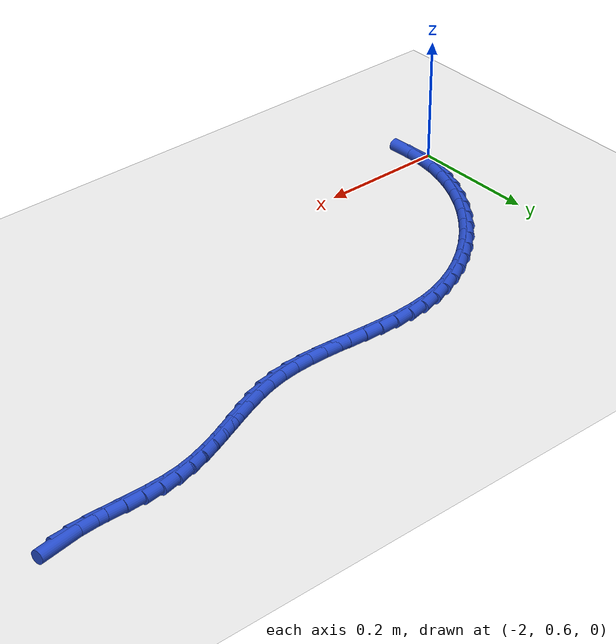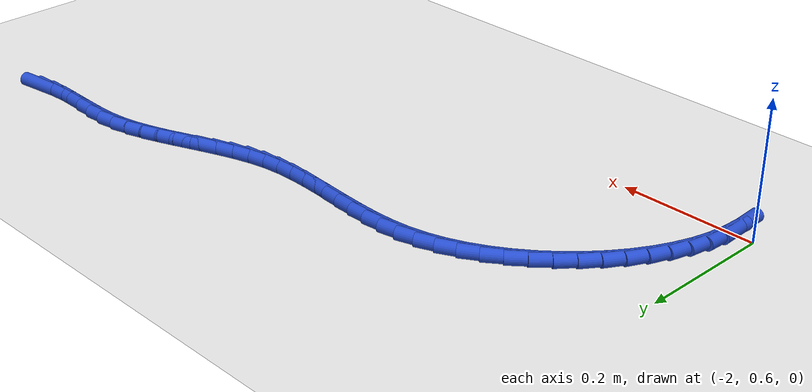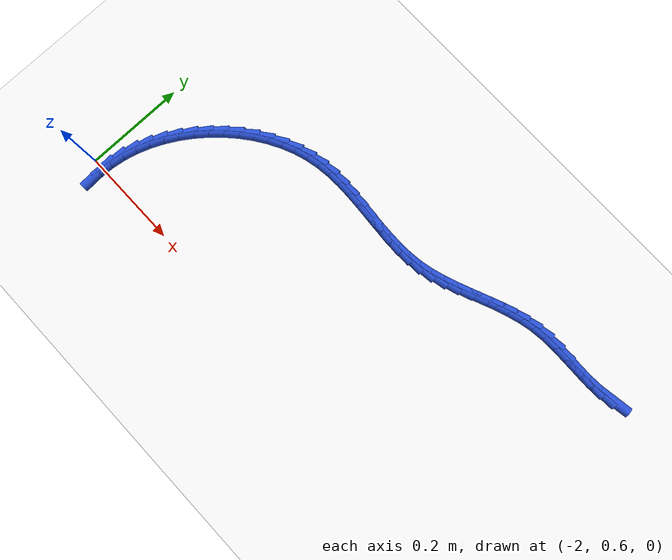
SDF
<sdf version="1.6">
 <world name="default">
  <model name="ground_plane">
   <static>1</static>
   <link name="link">
    <collision name="collision">
     <geometry><plane><normal>0 0 1</normal><size>100 100</size></plane></geometry>
     <surface><friction><ode><mu>100</mu><mu2>50</mu2></ode></friction></surface>
    </collision>
    <visual name="visual">
     <cast_shadows>0</cast_shadows>
     <geometry><plane><normal>0 0 1</normal><size>100 100</size></plane></geometry>
     <material>
      <script><uri>file://media/materials/scripts/gazebo.material</uri><name>Gazebo/WhiteGlow</name></script>
     </material>
    </visual>
   </link>
  </model>
  <model name="line">
   <link name="link_62">
    <pose>-1.0163039654575499 0.9964353679972839 0.01 0 1.57 0.1558032724814868</pose>
    <collision name="collision">
     <geometry><cylinder><radius>0.01</radius><length>0.08</length></cylinder></geometry>
    </collision>
    <visual name="visual">
     <material>
      <script><name>Gazebo/Blue</name><uri>file://media/materials/scripts/gazebo.material</uri></script>
     </material>
     <geometry><cylinder><radius>0.01</radius><length>0.08</length></cylinder></geometry>
    </visual>
   </link>
   <link name="link_63">
    <pose>-1.0424464535973896 0.9923290020193334 0.01 0 1.57 0.058876391674849204</pose>
    <collision name="collision">
     <geometry><cylinder><radius>0.01</radius><length>0.08</length></cylinder></geometry>
    </collision>
    <visual name="visual">
     <material>
      <script><name>Gazebo/Blue</name><uri>file://media/materials/scripts/gazebo.material</uri></script>
     </material>
     <geometry><cylinder><radius>0.01</radius><length>0.08</length></cylinder></geometry>
    </visual>
   </link>
   <link name="link_64">
    <pose>-1.069220046005786 0.9907508455619091 0.01 0 1.57 0.0003150934045366978</pose>
    <collision name="collision">
     <geometry><cylinder><radius>0.01</radius><length>0.08</length></cylinder></geometry>
    </collision>
    <visual name="visual">
     <material>
      <script><name>Gazebo/Blue</name><uri>file://media/materials/scripts/gazebo.material</uri></script>
     </material>
     <geometry><cylinder><radius>0.01</radius><length>0.08</length></cylinder></geometry>
    </visual>
   </link>
   <link name="link_65">
    <pose>-1.096404676529562 0.9907422798638428 0.01 0 1.57 -0.02200167445753424</pose>
    <collision name="collision">
     <geometry><cylinder><radius>0.01</radius><length>0.08</length></cylinder></geometry>
    </collision>
    <visual name="visual">
     <material>
      <script><name>Gazebo/Blue</name><uri>file://media/materials/scripts/gazebo.material</uri></script>
     </material>
     <geometry><cylinder><radius>0.01</radius><length>0.08</length></cylinder></geometry>
    </visual>
   </link>
   <link name="link_66">
    <pose>-1.123780279015543 0.9913446861639665 0.01 0 1.57 -0.009315710978553085</pose>
    <collision name="collision">
     <geometry><cylinder><radius>0.01</radius><length>0.08</length></cylinder></geometry>
    </collision>
    <visual name="visual">
     <material>
      <script><name>Gazebo/Blue</name><uri>file://media/materials/scripts/gazebo.material</uri></script>
     </material>
     <geometry><cylinder><radius>0.01</radius><length>0.08</length></cylinder></geometry>
    </visual>
   </link>
   <link name="link_67">
    <pose>-1.1511267873105522 0.9915994457011121 0.01 0 1.57 0.03878529648516115</pose>
    <collision name="collision">
     <geometry><cylinder><radius>0.01</radius><length>0.08</length></cylinder></geometry>
    </collision>
    <visual name="visual">
     <material>
      <script><name>Gazebo/Blue</name><uri>file://media/materials/scripts/gazebo.material</uri></script>
     </material>
     <geometry><cylinder><radius>0.01</radius><length>0.08</length></cylinder></geometry>
    </visual>
   </link>
   <link name="link_68">
    <pose>-1.1782241352614138 0.9905479397141118 0.01 0 1.57 0.12340733489830848</pose>
    <collision name="collision">
     <geometry><cylinder><radius>0.01</radius><length>0.08</length></cylinder></geometry>
    </collision>
    <visual name="visual">
     <material>
      <script><name>Gazebo/Blue</name><uri>file://media/materials/scripts/gazebo.material</uri></script>
     </material>
     <geometry><cylinder><radius>0.01</radius><length>0.08</length></cylinder></geometry>
    </visual>
   </link>
   <link name="link_69">
    <pose>-1.204855065224879 0.9872447018272346 0.01 0 1.57 0.22199528667618085</pose>
    <collision name="collision">
     <geometry><cylinder><radius>0.01</radius><length>0.08</length></cylinder></geometry>
    </collision>
    <visual name="visual">
     <material>
      <script><name>Gazebo/Blue</name><uri>file://media/materials/scripts/gazebo.material</uri></script>
     </material>
     <geometry><cylinder><radius>0.01</radius><length>0.08</length></cylinder></geometry>
    </visual>
   </link>
   <link name="link_70">
    <pose>-1.2309334606852995 0.9813584057965792 0.01 0 1.57 0.3004011627501246</pose>
    <collision name="collision">
     <geometry><cylinder><radius>0.01</radius><length>0.08</length></cylinder></geometry>
    </collision>
    <visual name="visual">
     <material>
      <script><name>Gazebo/Blue</name><uri>file://media/materials/scripts/gazebo.material</uri></script>
     </material>
     <geometry><cylinder><radius>0.01</radius><length>0.08</length></cylinder></geometry>
    </visual>
   </link>
   <link name="link_71">
    <pose>-1.2565574819972969 0.9734207027177864 0.01 0 1.57 0.35571955218539497</pose>
    <collision name="collision">
     <geometry><cylinder><radius>0.01</radius><length>0.08</length></cylinder></geometry>
    </collision>
    <visual name="visual">
     <material>
      <script><name>Gazebo/Blue</name><uri>file://media/materials/scripts/gazebo.material</uri></script>
     </material>
     <geometry><cylinder><radius>0.01</radius><length>0.08</length></cylinder></geometry>
    </visual>
   </link>
   <link name="link_72">
    <pose>-1.2818391121601214 0.9640279757880812 0.01 0 1.57 0.38842610063873384</pose>
    <collision name="collision">
     <geometry><cylinder><radius>0.01</radius><length>0.08</length></cylinder></geometry>
    </collision>
    <visual name="visual">
     <material>
      <script><name>Gazebo/Blue</name><uri>file://media/materials/scripts/gazebo.material</uri></script>
     </material>
     <geometry><cylinder><radius>0.01</radius><length>0.08</length></cylinder></geometry>
    </visual>
   </link>
   <link name="link_73">
    <pose>-1.3068903341730211 0.953776608204689 0.01 0 1.57 0.3990539690582409</pose>
    <collision name="collision">
     <geometry><cylinder><radius>0.01</radius><length>0.08</length></cylinder></geometry>
    </collision>
    <visual name="visual">
     <material>
      <script><name>Gazebo/Blue</name><uri>file://media/materials/scripts/gazebo.material</uri></script>
     </material>
     <geometry><cylinder><radius>0.01</radius><length>0.08</length></cylinder></geometry>
    </visual>
   </link>
   <link name="link_74">
    <pose>-1.3318231310352473 0.9432629831648351 0.01 0 1.57 0.38771213907537416</pose>
    <collision name="collision">
     <geometry><cylinder><radius>0.01</radius><length>0.08</length></cylinder></geometry>
    </collision>
    <visual name="visual">
     <material>
      <script><name>Gazebo/Blue</name><uri>file://media/materials/scripts/gazebo.material</uri></script>
     </material>
     <geometry><cylinder><radius>0.01</radius><length>0.08</length></cylinder></geometry>
    </visual>
   </link>
   <link name="link_75">
    <pose>-1.356749485746048 0.9330834838657444 0.01 0 1.57 0.3539296841890463</pose>
    <collision name="collision">
     <geometry><cylinder><radius>0.01</radius><length>0.08</length></cylinder></geometry>
    </collision>
    <visual name="visual">
     <material>
      <script><name>Gazebo/Blue</name><uri>file://media/materials/scripts/gazebo.material</uri></script>
     </material>
     <geometry><cylinder><radius>0.01</radius><length>0.08</length></cylinder></geometry>
    </visual>
   </link>
   <link name="link_76">
    <pose>-1.3817813813046744 0.9238344935046431 0.01 0 1.57 0.2967992722373064</pose>
    <collision name="collision">
     <geometry><cylinder><radius>0.01</radius><length>0.08</length></cylinder></geometry>
    </collision>
    <visual name="visual">
     <material>
      <script><name>Gazebo/Blue</name><uri>file://media/materials/scripts/gazebo.material</uri></script>
     </material>
     <geometry><cylinder><radius>0.01</radius><length>0.08</length></cylinder></geometry>
    </visual>
   </link>
   <link name="link_77">
    <pose>-1.4070308007103747 0.9161123952787552 0.01 0 1.57 0.21551840734850633</pose>
    <collision name="collision">
     <geometry><cylinder><radius>0.01</radius><length>0.08</length></cylinder></geometry>
    </collision>
    <visual name="visual">
     <material>
      <script><name>Gazebo/Blue</name><uri>file://media/materials/scripts/gazebo.material</uri></script>
     </material>
     <geometry><cylinder><radius>0.01</radius><length>0.08</length></cylinder></geometry>
    </visual>
   </link>
   <link name="link_78">
    <pose>-1.4326095905813583 0.9105127274320154 0.01 0 1.57 0.12146366894105301</pose>
    <collision name="collision">
     <geometry><cylinder><radius>0.01</radius><length>0.08</length></cylinder></geometry>
    </collision>
    <visual name="visual">
     <material>
      <script><name>Gazebo/Blue</name><uri>file://media/materials/scripts/gazebo.material</uri></script>
     </material>
     <geometry><cylinder><radius>0.01</radius><length>0.08</length></cylinder></geometry>
    </visual>
   </link>
   <link name="link_79">
    <pose>-1.4585829941870856 0.9073422956045123 0.01 0 1.57 0.043409096063745684</pose>
    <collision name="collision">
     <geometry><cylinder><radius>0.01</radius><length>0.08</length></cylinder></geometry>
    </collision>
    <visual name="visual">
     <material>
      <script><name>Gazebo/Blue</name><uri>file://media/materials/scripts/gazebo.material</uri></script>
     </material>
     <geometry><cylinder><radius>0.01</radius><length>0.08</length></cylinder></geometry>
    </visual>
   </link>
   <link name="link_80">
    <pose>-1.484901848881031 0.9061990997623764 0.01 0 1.57 -0.014107302118341374</pose>
    <collision name="collision">
     <geometry><cylinder><radius>0.01</radius><length>0.08</length></cylinder></geometry>
    </collision>
    <visual name="visual">
     <material>
      <script><name>Gazebo/Blue</name><uri>file://media/materials/scripts/gazebo.material</uri></script>
     </material>
     <geometry><cylinder><radius>0.01</radius><length>0.08</length></cylinder></geometry>
    </visual>
   </link>
   <link name="link_81">
    <pose>-1.5114997553226421 0.9065743493581484 0.01 0 1.57 -0.05160931934277523</pose>
    <collision name="collision">
     <geometry><cylinder><radius>0.01</radius><length>0.08</length></cylinder></geometry>
    </collision>
    <visual name="visual">
     <material>
      <script><name>Gazebo/Blue</name><uri>file://media/materials/scripts/gazebo.material</uri></script>
     </material>
     <geometry><cylinder><radius>0.01</radius><length>0.08</length></cylinder></geometry>
    </visual>
   </link>
   <link name="link_82">
    <pose>-1.5383103141713659 0.9079592538443689 0.01 0 1.57 -0.06984140740538196</pose>
    <collision name="collision">
     <geometry><cylinder><radius>0.01</radius><length>0.08</length></cylinder></geometry>
    </collision>
    <visual name="visual">
     <material>
      <script><name>Gazebo/Blue</name><uri>file://media/materials/scripts/gazebo.material</uri></script>
     </material>
     <geometry><cylinder><radius>0.01</radius><length>0.08</length></cylinder></geometry>
    </visual>
   </link>
   <link name="link_83">
    <pose>-1.56526712608665 0.9098450226735788 0.01 0 1.57 -0.06934404394226333</pose>
    <collision name="collision">
     <geometry><cylinder><radius>0.01</radius><length>0.08</length></cylinder></geometry>
    </collision>
    <visual name="visual">
     <material>
      <script><name>Gazebo/Blue</name><uri>file://media/materials/scripts/gazebo.material</uri></script>
     </material>
     <geometry><cylinder><radius>0.01</radius><length>0.08</length></cylinder></geometry>
    </visual>
   </link>
   <link name="link_84">
    <pose>-1.5923037917279426 0.9117228652983193 0.01 0 1.57 -0.050276258954411256</pose>
    <collision name="collision">
     <geometry><cylinder><radius>0.01</radius><length>0.08</length></cylinder></geometry>
    </collision>
    <visual name="visual">
     <material>
      <script><name>Gazebo/Blue</name><uri>file://media/materials/scripts/gazebo.material</uri></script>
     </material>
     <geometry><cylinder><radius>0.01</radius><length>0.08</length></cylinder></geometry>
    </visual>
   </link>
   <link name="link_85">
    <pose>-1.6193539117546907 0.9130839911711308 0.01 0 1.57 -0.012430977860833359</pose>
    <collision name="collision">
     <geometry><cylinder><radius>0.01</radius><length>0.08</length></cylinder></geometry>
    </collision>
    <visual name="visual">
     <material>
      <script><name>Gazebo/Blue</name><uri>file://media/materials/scripts/gazebo.material</uri></script>
     </material>
     <geometry><cylinder><radius>0.01</radius><length>0.08</length></cylinder></geometry>
    </visual>
   </link>
   <link name="link_86">
    <pose>-1.6463510868263416 0.913419609744554 0.01 0 1.57 0.044567790368423385</pose>
    <collision name="collision">
     <geometry><cylinder><radius>0.01</radius><length>0.08</length></cylinder></geometry>
    </collision>
    <visual name="visual">
     <material>
      <script><name>Gazebo/Blue</name><uri>file://media/materials/scripts/gazebo.material</uri></script>
     </material>
     <geometry><cylinder><radius>0.01</radius><length>0.08</length></cylinder></geometry>
    </visual>
   </link>
   <link name="link_87">
    <pose>-1.6732289176023436 0.9122209304711305 0.01 0 1.57 0.12085860153493712</pose>
    <collision name="collision">
     <geometry><cylinder><radius>0.01</radius><length>0.08</length></cylinder></geometry>
    </collision>
    <visual name="visual">
     <material>
      <script><name>Gazebo/Blue</name><uri>file://media/materials/scripts/gazebo.material</uri></script>
     </material>
     <geometry><cylinder><radius>0.01</radius><length>0.08</length></cylinder></geometry>
    </visual>
   </link>
   <link name="link_88">
    <pose>-1.6999210047421442 0.908979162803401 0.01 0 1.57 0.21554308193683752</pose>
    <collision name="collision">
     <geometry><cylinder><radius>0.01</radius><length>0.08</length></cylinder></geometry>
    </collision>
    <visual name="visual">
     <material>
      <script><name>Gazebo/Blue</name><uri>file://media/materials/scripts/gazebo.material</uri></script>
     </material>
     <geometry><cylinder><radius>0.01</radius><length>0.08</length></cylinder></geometry>
    </visual>
   </link>
   <link name="link_89">
    <pose>-1.72636008425299 0.9031904780797305 0.01 0 1.57 0.31759753539288654</pose>
    <collision name="collision">
     <geometry><cylinder><radius>0.01</radius><length>0.08</length></cylinder></geometry>
    </collision>
    <visual name="visual">
     <material>
      <script><name>Gazebo/Blue</name><uri>file://media/materials/scripts/gazebo.material</uri></script>
     </material>
     <geometry><cylinder><radius>0.01</radius><length>0.08</length></cylinder></geometry>
    </visual>
   </link>
   <link name="link_90">
    <pose>-1.7524320296979632 0.8946199720651433 0.01 0 1.57 0.41309471905929546</pose>
    <collision name="collision">
     <geometry><cylinder><radius>0.01</radius><length>0.08</length></cylinder></geometry>
    </collision>
    <visual name="visual">
     <material>
      <script><name>Gazebo/Blue</name><uri>file://media/materials/scripts/gazebo.material</uri></script>
     </material>
     <geometry><cylinder><radius>0.01</radius><length>0.08</length></cylinder></geometry>
    </visual>
   </link>
   <link name="link_91">
    <pose>-1.777952824363797 0.8834338122747923 0.01 0 1.57 0.5020362140405702</pose>
    <collision name="collision">
     <geometry><cylinder><radius>0.01</radius><length>0.08</length></cylinder></geometry>
    </collision>
    <visual name="visual">
     <material>
      <script><name>Gazebo/Blue</name><uri>file://media/materials/scripts/gazebo.material</uri></script>
     </material>
     <geometry><cylinder><radius>0.01</radius><length>0.08</length></cylinder></geometry>
    </visual>
   </link>
   <link name="link_92">
    <pose>-1.8027327493986605 0.8698308884680831 0.01 0 1.57 0.5857128525749753</pose>
    <collision name="collision">
     <geometry><cylinder><radius>0.01</radius><length>0.08</length></cylinder></geometry>
    </collision>
    <visual name="visual">
     <material>
      <script><name>Gazebo/Blue</name><uri>file://media/materials/scripts/gazebo.material</uri></script>
     </material>
     <geometry><cylinder><radius>0.01</radius><length>0.08</length></cylinder></geometry>
    </visual>
   </link>
   <link name="link_93">
    <pose>-1.8265820859507216 0.8540100904044217 0.01 0 1.57 0.6654592392000055</pose>
    <collision name="collision">
     <geometry><cylinder><radius>0.01</radius><length>0.08</length></cylinder></geometry>
    </collision>
    <visual name="visual">
     <material>
      <script><name>Gazebo/Blue</name><uri>file://media/materials/scripts/gazebo.material</uri></script>
     </material>
     <geometry><cylinder><radius>0.01</radius><length>0.08</length></cylinder></geometry>
    </visual>
   </link>
   <link name="link_94">
    <pose>-1.8493111151681487 0.8361703078432131 0.01 0 1.57 0.7426011934515262</pose>
    <collision name="collision">
     <geometry><cylinder><radius>0.01</radius><length>0.08</length></cylinder></geometry>
    </collision>
    <visual name="visual">
     <material>
      <script><name>Gazebo/Blue</name><uri>file://media/materials/scripts/gazebo.material</uri></script>
     </material>
     <geometry><cylinder><radius>0.01</radius><length>0.08</length></cylinder></geometry>
    </visual>
   </link>
   <link name="link_95">
    <pose>-1.8707301181991118 0.8165104305438642 0.01 0 1.57 0.818439848211465</pose>
    <collision name="collision">
     <geometry><cylinder><radius>0.01</radius><length>0.08</length></cylinder></geometry>
    </collision>
    <visual name="visual">
     <material>
      <script><name>Gazebo/Blue</name><uri>file://media/materials/scripts/gazebo.material</uri></script>
     </material>
     <geometry><cylinder><radius>0.01</radius><length>0.08</length></cylinder></geometry>
    </visual>
   </link>
   <link name="link_96">
    <pose>-1.8906493761917784 0.7952293482657795 0.01 0 1.57 0.8942564837880316</pose>
    <collision name="collision">
     <geometry><cylinder><radius>0.01</radius><length>0.08</length></cylinder></geometry>
    </collision>
    <visual name="visual">
     <material>
      <script><name>Gazebo/Blue</name><uri>file://media/materials/scripts/gazebo.material</uri></script>
     </material>
     <geometry><cylinder><radius>0.01</radius><length>0.08</length></cylinder></geometry>
    </visual>
   </link>
   <link name="link_97">
    <pose>-1.9088791702943175 0.7725259507683659 0.01 0 1.57 0.9713263012804121</pose>
    <collision name="collision">
     <geometry><cylinder><radius>0.01</radius><length>0.08</length></cylinder></geometry>
    </collision>
    <visual name="visual">
     <material>
      <script><name>Gazebo/Blue</name><uri>file://media/materials/scripts/gazebo.material</uri></script>
     </material>
     <geometry><cylinder><radius>0.01</radius><length>0.08</length></cylinder></geometry>
    </visual>
   </link>
   <link name="link_98">
    <pose>-1.925229781654897 0.7485991278110283 0.01 0 1.57 1.0509317331914811</pose>
    <collision name="collision">
     <geometry><cylinder><radius>0.01</radius><length>0.08</length></cylinder></geometry>
    </collision>
    <visual name="visual">
     <material>
      <script><name>Gazebo/Blue</name><uri>file://media/materials/scripts/gazebo.material</uri></script>
     </material>
     <geometry><cylinder><radius>0.01</radius><length>0.08</length></cylinder></geometry>
    </visual>
   </link>
   <link name="link_99">
    <pose>-1.9395114914216867 0.7236477691531727 0.01 0 1.57 1.1343660426979656</pose>
    <collision name="collision">
     <geometry><cylinder><radius>0.01</radius><length>0.08</length></cylinder></geometry>
    </collision>
    <visual name="visual">
     <material>
      <script><name>Gazebo/Blue</name><uri>file://media/materials/scripts/gazebo.material</uri></script>
     </material>
     <geometry><cylinder><radius>0.01</radius><length>0.08</length></cylinder></geometry>
    </visual>
   </link>
   <link name="link_100">
    <pose>-1.951534580742854 0.6978707645542048 0.01 0 1.57 1.2229159737434971</pose>
    <collision name="collision">
     <geometry><cylinder><radius>0.01</radius><length>0.08</length></cylinder></geometry>
    </collision>
    <visual name="visual">
     <material>
      <script><name>Gazebo/Blue</name><uri>file://media/materials/scripts/gazebo.material</uri></script>
     </material>
     <geometry><cylinder><radius>0.01</radius><length>0.08</length></cylinder></geometry>
    </visual>
   </link>
   <link name="link_101">
    <pose>-1.961109330766568 0.6714670037735304 0.01 0 1.57 1.317808779593496</pose>
    <collision name="collision">
     <geometry><cylinder><radius>0.01</radius><length>0.08</length></cylinder></geometry>
    </collision>
    <visual name="visual">
     <material>
      <script><name>Gazebo/Blue</name><uri>file://media/materials/scripts/gazebo.material</uri></script>
     </material>
     <geometry><cylinder><radius>0.01</radius><length>0.08</length></cylinder></geometry>
    </visual>
   </link>
   <link name="link_102">
    <pose>-1.9680460226409977 0.6446353765705551 0.01 0 1.57 1.420106171588903</pose>
    <collision name="collision">
     <geometry><cylinder><radius>0.01</radius><length>0.08</length></cylinder></geometry>
    </collision>
    <visual name="visual">
     <material>
      <script><name>Gazebo/Blue</name><uri>file://media/materials/scripts/gazebo.material</uri></script>
     </material>
     <geometry><cylinder><radius>0.01</radius><length>0.08</length></cylinder></geometry>
    </visual>
   </link>
   <link name="link_103">
    <pose>-1.9721549375143113 0.617574772704685 0.01 0 1.57 1.5279261821003454</pose>
    <collision name="collision">
     <geometry><cylinder><radius>0.01</radius><length>0.08</length></cylinder></geometry>
    </collision>
    <visual name="visual">
     <material>
      <script><name>Gazebo/Blue</name><uri>file://media/materials/scripts/gazebo.material</uri></script>
     </material>
     <geometry><cylinder><radius>0.01</radius><length>0.08</length></cylinder></geometry>
    </visual>
   </link>
   <link name="link_104">
    <pose>-1.9733173862710909 0.5904758080854877 0.01 0 1.57 -1.5267690341471392</pose>
    <collision name="collision">
     <geometry><cylinder><radius>0.01</radius><length>0.08</length></cylinder></geometry>
    </collision>
    <visual name="visual">
     <material>
      <script><name>Gazebo/Blue</name><uri>file://media/materials/scripts/gazebo.material</uri></script>
     </material>
     <geometry><cylinder><radius>0.01</radius><length>0.08</length></cylinder></geometry>
    </visual>
   </link>
  </model>
 </world>
</sdf>
